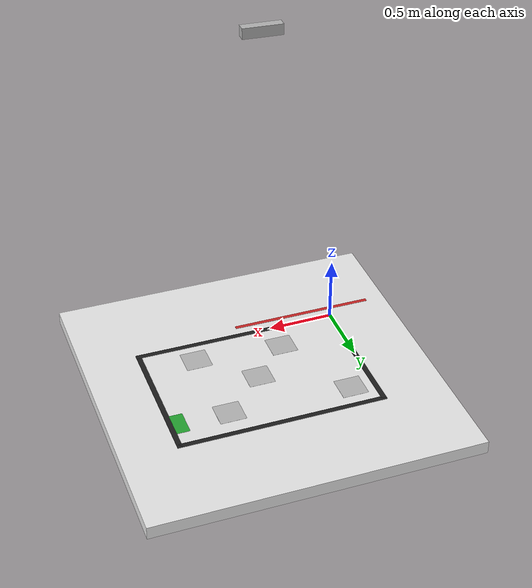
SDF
<sdf version="1.6">
 <world name="default">
  <light name="sun" type="directional">
   <pose>0.75 0.5 3 0 -0 0</pose>
   <diffuse>0.8 0.8 0.8 1</diffuse>
   <specular>0.2 0.2 0.2 1</specular>
   <attenuation>
    <range>1000</range>
    <constant>0.9</constant>
    <linear>0.01</linear>
    <quadratic>0.001</quadratic>
   </attenuation>
   <direction>-0.5 0.1 -0.9</direction>
  </light>
  <gravity>0 0 -9.8</gravity>
  <magnetic_field>6e-06 2.3e-05 -4.2e-05</magnetic_field>
  <atmosphere type="adiabatic"/>
  <physics name="default_physics" default="0" type="ode">
   <ode>
    <solver>
     <type>quick</type>
     <iters>10</iters>
     <sor>1.3</sor>
     <use_dynamic_moi_rescaling>0</use_dynamic_moi_rescaling>
    </solver>
    <constraints>
     <cfm>0</cfm>
     <erp>0.2</erp>
     <contact_max_correcting_vel>100</contact_max_correcting_vel>
     <contact_surface_layer>0.001</contact_surface_layer>
    </constraints>
   </ode>
   <max_step_size>0.01</max_step_size>
   <real_time_factor>0.5</real_time_factor>
   <real_time_update_rate>100</real_time_update_rate>
  </physics>
  <scene><ambient>0.7 0.7 0.7 1</ambient><background>0.7 0.7 0.7 1</background><shadows>0</shadows></scene>
  <spherical_coordinates>
   <surface_model>EARTH_WGS84</surface_model>
   <latitude_deg>0</latitude_deg>
   <longitude_deg>0</longitude_deg>
   <elevation>0</elevation>
   <heading_deg>0</heading_deg>
  </spherical_coordinates>
  <model name="mindstorm_map">
   <static>1</static>
   <link name="long_stripe_down::link_0">
    <pose>0.78 0 0 0 -0 0</pose>
    <inertial>
     <mass>1</mass>
     <inertia>
      <ixx>0.166667</ixx>
      <ixy>0</ixy>
      <ixz>0</ixz>
      <iyy>0.166667</iyy>
      <iyz>0</iyz>
      <izz>0.166667</izz>
     </inertia>
    </inertial>
    <visual name="visual">
     <geometry><box><size>1.6 0.04 0.002</size></box></geometry>
     <material>
      <lighting>1</lighting>
      <script><uri>file://media/materials/scripts/gazebo.material</uri><name>Gazebo/Black</name></script>
      <shader type="vertex"><normal_map>__default__</normal_map></shader>
     </material>
    </visual>
    <collision name="collision">
     <geometry><box><size>1.6 0.04 0.002</size></box></geometry>
     <surface>
      <friction>
       <ode><mu>1</mu><mu2>1</mu2><fdir1>0 0 0</fdir1><slip1>0</slip1><slip2>0</slip2></ode>
       <torsional>
        <coefficient>1</coefficient>
        <patch_radius>0</patch_radius>
        <surface_radius>0</surface_radius>
        <use_patch_radius>1</use_patch_radius>
        <ode><slip>0</slip></ode>
       </torsional>
      </friction>
      <bounce><restitution_coefficient>0</restitution_coefficient><threshold>1e+06</threshold></bounce>
      <contact>
       <collide_without_contact>0</collide_without_contact>
       <collide_without_contact_bitmask>1</collide_without_contact_bitmask>
       <collide_bitmask>1</collide_bitmask>
       <ode>
        <soft_cfm>0</soft_cfm>
        <soft_erp>0.2</soft_erp>
        <kp>1e+13</kp>
        <kd>1</kd>
        <max_vel>0.01</max_vel>
        <min_depth>0</min_depth>
       </ode>
       <bullet>
        <split_impulse>1</split_impulse>
        <split_impulse_penetration_threshold>-0.01</split_impulse_penetration_threshold>
        <soft_cfm>0</soft_cfm>
        <soft_erp>0.2</soft_erp>
        <kp>1e+13</kp>
        <kd>1</kd>
       </bullet>
      </contact>
     </surface>
    </collision>
   </link>
   <static>0</static>
   <static>1</static>
   <link name="long_stripe_up::link_0">
    <pose>0.78 1.06 0 0 -0 0</pose>
    <inertial>
     <mass>1</mass>
     <inertia>
      <ixx>0.166667</ixx>
      <ixy>0</ixy>
      <ixz>0</ixz>
      <iyy>0.166667</iyy>
      <iyz>0</iyz>
      <izz>0.166667</izz>
     </inertia>
    </inertial>
    <visual name="visual">
     <geometry><box><size>1.6 0.04 0.002</size></box></geometry>
     <material>
      <lighting>1</lighting>
      <script><uri>file://media/materials/scripts/gazebo.material</uri><name>Gazebo/Black</name></script>
      <shader type="vertex"><normal_map>__default__</normal_map></shader>
     </material>
    </visual>
    <collision name="collision">
     <geometry><box><size>1.6 0.04 0.002</size></box></geometry>
     <surface>
      <friction>
       <ode><mu>1</mu><mu2>1</mu2><fdir1>0 0 0</fdir1><slip1>0</slip1><slip2>0</slip2></ode>
       <torsional>
        <coefficient>1</coefficient>
        <patch_radius>0</patch_radius>
        <surface_radius>0</surface_radius>
        <use_patch_radius>1</use_patch_radius>
        <ode><slip>0</slip></ode>
       </torsional>
      </friction>
      <bounce><restitution_coefficient>0</restitution_coefficient><threshold>1e+06</threshold></bounce>
      <contact>
       <collide_without_contact>0</collide_without_contact>
       <collide_without_contact_bitmask>1</collide_without_contact_bitmask>
       <collide_bitmask>1</collide_bitmask>
       <ode>
        <soft_cfm>0</soft_cfm>
        <soft_erp>0.2</soft_erp>
        <kp>1e+13</kp>
        <kd>1</kd>
        <max_vel>0.01</max_vel>
        <min_depth>0</min_depth>
       </ode>
       <bullet>
        <split_impulse>1</split_impulse>
        <split_impulse_penetration_threshold>-0.01</split_impulse_penetration_threshold>
        <soft_cfm>0</soft_cfm>
        <soft_erp>0.2</soft_erp>
        <kp>1e+13</kp>
        <kd>1</kd>
       </bullet>
      </contact>
     </surface>
    </collision>
   </link>
   <static>0</static>
   <static>1</static>
   <link name="short_stripe_left::link_0">
    <pose>0 0.53 0 0 -0 1.5708</pose>
    <inertial>
     <mass>1</mass>
     <inertia>
      <ixx>0.166667</ixx>
      <ixy>0</ixy>
      <ixz>0</ixz>
      <iyy>0.166667</iyy>
      <iyz>0</iyz>
      <izz>0.166667</izz>
     </inertia>
    </inertial>
    <visual name="visual">
     <geometry><box><size>1.1 0.04 0.002</size></box></geometry>
     <material>
      <lighting>1</lighting>
      <script><uri>file://media/materials/scripts/gazebo.material</uri><name>Gazebo/Black</name></script>
      <shader type="vertex"><normal_map>__default__</normal_map></shader>
     </material>
    </visual>
    <collision name="collision">
     <geometry><box><size>1.1 0.04 0.002</size></box></geometry>
     <surface>
      <friction>
       <ode><mu>1</mu><mu2>1</mu2><fdir1>0 0 0</fdir1><slip1>0</slip1><slip2>0</slip2></ode>
       <torsional>
        <coefficient>1</coefficient>
        <patch_radius>0</patch_radius>
        <surface_radius>0</surface_radius>
        <use_patch_radius>1</use_patch_radius>
        <ode><slip>0</slip></ode>
       </torsional>
      </friction>
      <bounce><restitution_coefficient>0</restitution_coefficient><threshold>1e+06</threshold></bounce>
      <contact>
       <collide_without_contact>0</collide_without_contact>
       <collide_without_contact_bitmask>1</collide_without_contact_bitmask>
       <collide_bitmask>1</collide_bitmask>
       <ode>
        <soft_cfm>0</soft_cfm>
        <soft_erp>0.2</soft_erp>
        <kp>1e+13</kp>
        <kd>1</kd>
        <max_vel>0.01</max_vel>
        <min_depth>0</min_depth>
       </ode>
       <bullet>
        <split_impulse>1</split_impulse>
        <split_impulse_penetration_threshold>-0.01</split_impulse_penetration_threshold>
        <soft_cfm>0</soft_cfm>
        <soft_erp>0.2</soft_erp>
        <kp>1e+13</kp>
        <kd>1</kd>
       </bullet>
      </contact>
     </surface>
    </collision>
   </link>
   <static>0</static>
   <static>1</static>
   <link name="short_stripe_right::link_0">
    <pose>1.56 0.53 0 0 -0 1.5708</pose>
    <inertial>
     <mass>1</mass>
     <inertia>
      <ixx>0.166667</ixx>
      <ixy>0</ixy>
      <ixz>0</ixz>
      <iyy>0.166667</iyy>
      <iyz>0</iyz>
      <izz>0.166667</izz>
     </inertia>
    </inertial>
    <visual name="visual">
     <geometry><box><size>1.1 0.04 0.002</size></box></geometry>
     <material>
      <lighting>1</lighting>
      <script><uri>file://media/materials/scripts/gazebo.material</uri><name>Gazebo/Black</name></script>
      <shader type="vertex"><normal_map>__default__</normal_map></shader>
     </material>
    </visual>
    <collision name="collision">
     <geometry><box><size>1.1 0.04 0.002</size></box></geometry>
     <surface>
      <friction>
       <ode><mu>1</mu><mu2>1</mu2><fdir1>0 0 0</fdir1><slip1>0</slip1><slip2>0</slip2></ode>
       <torsional>
        <coefficient>1</coefficient>
        <patch_radius>0</patch_radius>
        <surface_radius>0</surface_radius>
        <use_patch_radius>1</use_patch_radius>
        <ode><slip>0</slip></ode>
       </torsional>
      </friction>
      <bounce><restitution_coefficient>0</restitution_coefficient><threshold>1e+06</threshold></bounce>
      <contact>
       <collide_without_contact>0</collide_without_contact>
       <collide_without_contact_bitmask>1</collide_without_contact_bitmask>
       <collide_bitmask>1</collide_bitmask>
       <ode>
        <soft_cfm>0</soft_cfm>
        <soft_erp>0.2</soft_erp>
        <kp>1e+13</kp>
        <kd>1</kd>
        <max_vel>0.01</max_vel>
        <min_depth>0</min_depth>
       </ode>
       <bullet>
        <split_impulse>1</split_impulse>
        <split_impulse_penetration_threshold>-0.01</split_impulse_penetration_threshold>
        <soft_cfm>0</soft_cfm>
        <soft_erp>0.2</soft_erp>
        <kp>1e+13</kp>
        <kd>1</kd>
       </bullet>
      </contact>
     </surface>
    </collision>
   </link>
   <static>0</static>
   <static>1</static>
   <link name="short_red_stripe::link_0">
    <pose>0.2 -0.1 0 0 -0 0</pose>
    <inertial>
     <mass>1</mass>
     <inertia>
      <ixx>0.166667</ixx>
      <ixy>0</ixy>
      <ixz>0</ixz>
      <iyy>0.166667</iyy>
      <iyz>0</iyz>
      <izz>0.166667</izz>
     </inertia>
    </inertial>
    <visual name="visual">
     <geometry><box><size>1.1 0.03 0.002</size></box></geometry>
     <material>
      <lighting>1</lighting>
      <script><uri>file://media/materials/scripts/gazebo.material</uri><name>Gazebo/Red</name></script>
      <shader type="vertex"><normal_map>__default__</normal_map></shader>
     </material>
     <cast_shadows>0</cast_shadows>
    </visual>
   </link>
   <static>0</static>
   <static>1</static>
   <link name="arena_ground::link_0">
    <pose>0.75 0.5 -0.05 0 -0 0</pose>
    <inertial>
     <mass>1</mass>
     <inertia>
      <ixx>0.166667</ixx>
      <ixy>0</ixy>
      <ixz>0</ixz>
      <iyy>0.166667</iyy>
      <iyz>0</iyz>
      <izz>0.166667</izz>
     </inertia>
    </inertial>
    <visual name="visual">
     <geometry><box><size>2.5 2.5 0.1</size></box></geometry>
     <material>
      <script><uri>file://media/materials/scripts/gazebo.material</uri><name>Gazebo/White</name></script>
     </material>
    </visual>
    <collision name="collision">
     <geometry><box><size>2.5 2.5 0.1</size></box></geometry>
     <surface>
      <friction>
       <ode><mu>1</mu><mu2>1</mu2><fdir1>0 0 0</fdir1><slip1>0</slip1><slip2>0</slip2></ode>
       <torsional>
        <coefficient>1</coefficient>
        <patch_radius>0</patch_radius>
        <surface_radius>0</surface_radius>
        <use_patch_radius>1</use_patch_radius>
        <ode><slip>0</slip></ode>
       </torsional>
      </friction>
      <bounce><restitution_coefficient>0</restitution_coefficient><threshold>1e+06</threshold></bounce>
      <contact>
       <collide_without_contact>0</collide_without_contact>
       <collide_without_contact_bitmask>1</collide_without_contact_bitmask>
       <collide_bitmask>1</collide_bitmask>
       <ode>
        <soft_cfm>0</soft_cfm>
        <soft_erp>0.2</soft_erp>
        <kp>1e+13</kp>
        <kd>1</kd>
        <max_vel>0.01</max_vel>
        <min_depth>0</min_depth>
       </ode>
       <bullet>
        <split_impulse>1</split_impulse>
        <split_impulse_penetration_threshold>-0.01</split_impulse_penetration_threshold>
        <soft_cfm>0</soft_cfm>
        <soft_erp>0.2</soft_erp>
        <kp>1e+13</kp>
        <kd>1</kd>
       </bullet>
      </contact>
     </surface>
    </collision>
   </link>
   <static>0</static>
  </model>
  <model name="camera_0">
   <static>1</static>
   <pose>0.75 0.5 2.8 -0 1.5 1.5</pose>
   <link name="link">
    <inertial><mass>0.1</mass></inertial>
    <collision name="collision"><geometry><box><size>0.073 0.276 0.072</size></box></geometry></collision>
    <visual name="visual"><geometry><box><size>0.073 0.276 0.072</size></box></geometry></visual>
    <sensor name="camera" type="camera">
     <update_rate>2</update_rate>
     <visualize>1</visualize>
     <camera name="__default__">
      <horizontal_fov>1.3</horizontal_fov>
      <image><width>800</width><height>600</height><format>R8G8B8</format></image>
      <clip><near>0.1</near><far>5</far></clip>
      <distortion><k1>-0.5</k1><k2>-0.1</k2><k3>-0.05</k3><p1>0</p1><p2>0</p2><center>0.5 0.5</center></distortion>
     </camera>
     <plugin name="camera_controller" filename="libgazebo_ros_camera.so">
      <alwaysOn>true</alwaysOn>
      <updateRate>0.0</updateRate>
      <cameraName>camera</cameraName>
      <imageTopicName>rgb/image_raw</imageTopicName>
      <cameraInfoTopicName>rgb/camera_info</cameraInfoTopicName>
      <hackBaseline>0.07</hackBaseline>
      <distortionK1>0.0</distortionK1>
      <distortionK2>0.0</distortionK2>
      <distortionK3>0.0</distortionK3>
      <distortionT1>0.0</distortionT1>
      <distortionT2>0.0</distortionT2>
     </plugin>
    </sensor>
   </link>
  </model>
  <model name="gate">
   <static>1</static>
   <link name="link_0">
    <visual name="visual">
     <geometry><box><size>0.1 0.2 0.002</size></box></geometry>
     <material>
      <lighting>1</lighting>
      <script><uri>file://media/materials/scripts/gazebo.material</uri><name>Gazebo/Green</name></script>
      <shader type="vertex"><normal_map>__default__</normal_map></shader>
     </material>
    </visual>
   </link>
   <pose>1.49136 0.832205 0 0 -0 0</pose>
  </model>
  <model name="victim_1">
   <static>1</static>
   <link name="link_0">
    <visual name="visual">
     <geometry><box><size>0.2 0.2 0.001</size></box></geometry>
     <material>
      <script>
       <uri>model://victim_1/materials/scripts</uri>
       <uri>model://victim_1/materials/textures</uri>
       <name>TexturedShape/Victim</name>
      </script>
     </material>
     <cast_shadows>0</cast_shadows>
    </visual>
   </link>
   <static>0</static>
   <pose>0.491866 0.223866 0 0 -0 0</pose>
  </model>
  <model name="victim_2">
   <static>1</static>
   <link name="link_0">
    <visual name="visual">
     <geometry><box><size>0.2 0.2 0.001</size></box></geometry>
     <material>
      <script>
       <uri>model://victim_2/materials/scripts</uri>
       <uri>model://victim_2/materials/textures</uri>
       <name>TexturedShape/Victim2</name>
      </script>
     </material>
     <cast_shadows>0</cast_shadows>
    </visual>
   </link>
   <static>0</static>
   <pose>0.179832 0.863501 0 0 -0 0</pose>
  </model>
  <model name="victim_3">
   <static>1</static>
   <link name="link_0">
    <visual name="visual">
     <geometry><box><size>0.2 0.2 0.001</size></box></geometry>
     <material>
      <script>
       <uri>model://victim_3/materials/scripts</uri>
       <uri>model://victim_3/materials/textures</uri>
       <name>TexturedShape/Victim3</name>
      </script>
     </material>
     <cast_shadows>0</cast_shadows>
    </visual>
   </link>
   <static>0</static>
   <pose>0.781978 0.518669 0 0 -0 0</pose>
  </model>
  <model name="victim_4">
   <static>1</static>
   <link name="link_0">
    <visual name="visual">
     <geometry><box><size>0.2 0.2 0.001</size></box></geometry>
     <material>
      <script>
       <uri>model://victim_4/materials/scripts</uri>
       <uri>model://victim_4/materials/textures</uri>
       <name>TexturedShape/Victim4</name>
      </script>
     </material>
     <cast_shadows>0</cast_shadows>
    </visual>
   </link>
   <static>0</static>
   <pose>1.11693 0.836959 0 0 -0 0</pose>
  </model>
  <model name="victim_5">
   <static>1</static>
   <link name="link_0">
    <visual name="visual">
     <geometry><box><size>0.2 0.2 0.001</size></box></geometry>
     <material>
      <script>
       <uri>model://victim_5/materials/scripts</uri>
       <uri>model://victim_5/materials/textures</uri>
       <name>TexturedShape/Victim5</name>
      </script>
     </material>
     <cast_shadows>0</cast_shadows>
    </visual>
   </link>
   <static>0</static>
   <pose>1.16078 0.179592 0 0 -0 0</pose>
  </model>
 </world>
</sdf>
